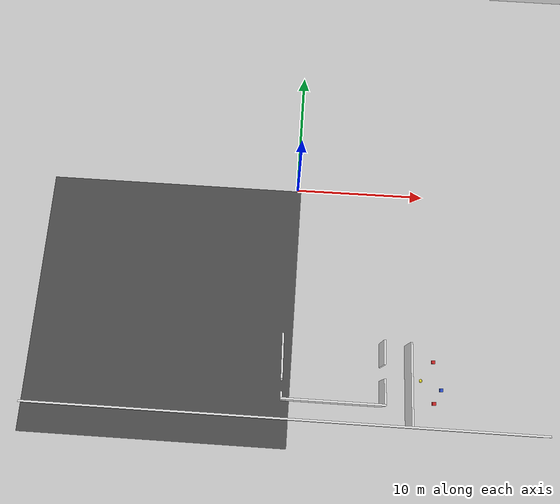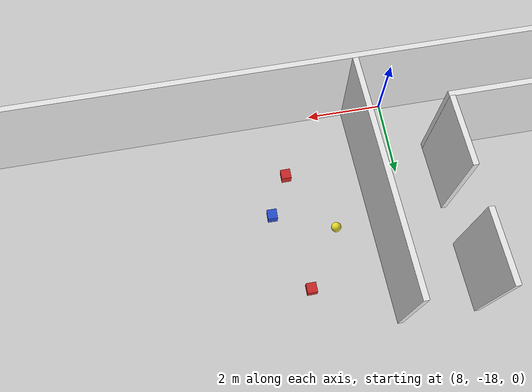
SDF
<sdf version="1.7">
 <world name="default">
  <model name="ground_plane">
   <static>1</static>
   <link name="link">
    <collision name="collision">
     <geometry><plane><normal>0 0 1</normal><size>100 100</size></plane></geometry>
     <surface><friction><ode><mu>100</mu><mu2>50</mu2></ode></friction></surface>
    </collision>
    <visual name="visual">
     <cast_shadows>0</cast_shadows>
     <geometry><plane><normal>0 0 1</normal><size>100 100</size></plane></geometry>
     <material>
      <script><uri>file://media/materials/scripts/gazebo.material</uri><name>Gazebo/Grey</name></script>
     </material>
    </visual>
    <velocity_decay><linear>0</linear><angular>0</angular></velocity_decay>
   </link>
  </model>
  <model name="asphalt_plane">
   <static>1</static>
   <link name="link">
    <collision name="collision"><geometry><box><size>20 20 0.1</size></box></geometry></collision>
    <visual name="visual">
     <cast_shadows>0</cast_shadows>
     <geometry><box><size>20 20 0.1</size></box></geometry>
     <material>
      <script>
       <uri>model://asphalt_plane/materials/scripts</uri>
       <uri>model://asphalt_plane/materials/textures</uri>
       <name>vrc/asphalt</name>
      </script>
     </material>
    </visual>
   </link>
   <pose>-9.73878 -10.1135 0 0 -0 0</pose>
  </model>
  <model name="white_wall_outside_clone">
   <link name="link">
    <inertial>
     <mass>1</mass>
     <inertia>
      <ixx>0.166667</ixx>
      <ixy>0</ixy>
      <ixz>0</ixz>
      <iyy>0.166667</iyy>
      <iyz>0</iyz>
      <izz>0.166667</izz>
     </inertia>
    </inertial>
    <visual name="visual">
     <geometry><box><size>37.6355 0.139088 2.78993</size></box></geometry>
     <material>
      <script><name>Gazebo/White</name><uri>file://media/materials/scripts/gazebo.material</uri></script>
      <shader type="vertex"><normal_map>__default__</normal_map></shader>
      <ambient>1 1 1 1</ambient>
      <diffuse>1 1 1 1</diffuse>
      <specular>0 0 0 1</specular>
      <emissive>0 0 0 1</emissive>
     </material>
    </visual>
    <collision name="collision">
     <geometry><box><size>37.6355 0.139088 2.78993</size></box></geometry>
     <surface>
      <friction>
       <ode><mu>1</mu><mu2>1</mu2><fdir1>0 0 0</fdir1><slip1>0</slip1><slip2>0</slip2></ode>
       <torsional>
        <coefficient>1</coefficient>
        <patch_radius>0</patch_radius>
        <surface_radius>0</surface_radius>
        <use_patch_radius>1</use_patch_radius>
        <ode><slip>0</slip></ode>
       </torsional>
      </friction>
      <bounce><restitution_coefficient>0</restitution_coefficient><threshold>1e+06</threshold></bounce>
      <contact>
       <collide_without_contact>0</collide_without_contact>
       <collide_without_contact_bitmask>1</collide_without_contact_bitmask>
       <collide_bitmask>1</collide_bitmask>
       <ode>
        <soft_cfm>0</soft_cfm>
        <soft_erp>0.2</soft_erp>
        <kp>1e+13</kp>
        <kd>1</kd>
        <max_vel>0.01</max_vel>
        <min_depth>0</min_depth>
       </ode>
       <bullet>
        <split_impulse>1</split_impulse>
        <split_impulse_penetration_threshold>-0.01</split_impulse_penetration_threshold>
        <soft_cfm>0</soft_cfm>
        <soft_erp>0.2</soft_erp>
        <kp>1e+13</kp>
        <kd>1</kd>
       </bullet>
      </contact>
     </surface>
    </collision>
   </link>
   <static>1</static>
   <pose>-0.112251 -17.9871 1.44002 -1e-06 4e-06 -1.6e-05</pose>
  </model>
  <model name="white_wall3">
   <link name="link">
    <inertial>
     <mass>1</mass>
     <inertia>
      <ixx>0.166667</ixx>
      <ixy>0</ixy>
      <ixz>0</ixz>
      <iyy>0.166667</iyy>
      <iyz>0</iyz>
      <izz>0.166667</izz>
     </inertia>
    </inertial>
    <visual name="visual">
     <geometry><box><size>1.77743 0.139088 2.78993</size></box></geometry>
     <material>
      <script><name>Gazebo/White</name><uri>file://media/materials/scripts/gazebo.material</uri></script>
      <shader type="vertex"><normal_map>__default__</normal_map></shader>
      <ambient>1 1 1 1</ambient>
      <diffuse>1 1 1 1</diffuse>
      <specular>0 0 0 1</specular>
      <emissive>0 0 0 1</emissive>
     </material>
    </visual>
    <collision name="collision">
     <geometry><box><size>1.77743 0.139088 2.78993</size></box></geometry>
     <surface>
      <friction>
       <ode><mu>1</mu><mu2>1</mu2><fdir1>0 0 0</fdir1><slip1>0</slip1><slip2>0</slip2></ode>
       <torsional>
        <coefficient>1</coefficient>
        <patch_radius>0</patch_radius>
        <surface_radius>0</surface_radius>
        <use_patch_radius>1</use_patch_radius>
        <ode><slip>0</slip></ode>
       </torsional>
      </friction>
      <bounce><restitution_coefficient>0</restitution_coefficient><threshold>1e+06</threshold></bounce>
      <contact>
       <collide_without_contact>0</collide_without_contact>
       <collide_without_contact_bitmask>1</collide_without_contact_bitmask>
       <collide_bitmask>1</collide_bitmask>
       <ode>
        <soft_cfm>0</soft_cfm>
        <soft_erp>0.2</soft_erp>
        <kp>1e+13</kp>
        <kd>1</kd>
        <max_vel>0.01</max_vel>
        <min_depth>0</min_depth>
       </ode>
       <bullet>
        <split_impulse>1</split_impulse>
        <split_impulse_penetration_threshold>-0.01</split_impulse_penetration_threshold>
        <soft_cfm>0</soft_cfm>
        <soft_erp>0.2</soft_erp>
        <kp>1e+13</kp>
        <kd>1</kd>
       </bullet>
      </contact>
     </surface>
    </collision>
   </link>
   <static>1</static>
   <pose>6.94731 -12.8803 1.43995 4e-06 1e-06 1.59932</pose>
  </model>
  <model name="white_wall2_clone">
   <link name="link">
    <inertial>
     <mass>1</mass>
     <inertia>
      <ixx>0.166667</ixx>
      <ixy>0</ixy>
      <ixz>0</ixz>
      <iyy>0.166667</iyy>
      <iyz>0</iyz>
      <izz>0.166667</izz>
     </inertia>
    </inertial>
    <visual name="visual">
     <geometry><box><size>3.22688 0.139088 2.78993</size></box></geometry>
     <material>
      <script><name>Gazebo/White</name><uri>file://media/materials/scripts/gazebo.material</uri></script>
      <shader type="vertex"><normal_map>__default__</normal_map></shader>
      <ambient>1 1 1 1</ambient>
      <diffuse>1 1 1 1</diffuse>
      <specular>0 0 0 1</specular>
      <emissive>0 0 0 1</emissive>
     </material>
    </visual>
    <collision name="collision">
     <geometry><box><size>3.22688 0.139088 2.78993</size></box></geometry>
     <surface>
      <friction>
       <ode><mu>1</mu><mu2>1</mu2><fdir1>0 0 0</fdir1><slip1>0</slip1><slip2>0</slip2></ode>
       <torsional>
        <coefficient>1</coefficient>
        <patch_radius>0</patch_radius>
        <surface_radius>0</surface_radius>
        <use_patch_radius>1</use_patch_radius>
        <ode><slip>0</slip></ode>
       </torsional>
      </friction>
      <bounce><restitution_coefficient>0</restitution_coefficient><threshold>1e+06</threshold></bounce>
      <contact>
       <collide_without_contact>0</collide_without_contact>
       <collide_without_contact_bitmask>1</collide_without_contact_bitmask>
       <collide_bitmask>1</collide_bitmask>
       <ode>
        <soft_cfm>0</soft_cfm>
        <soft_erp>0.2</soft_erp>
        <kp>1e+13</kp>
        <kd>1</kd>
        <max_vel>0.01</max_vel>
        <min_depth>0</min_depth>
       </ode>
       <bullet>
        <split_impulse>1</split_impulse>
        <split_impulse_penetration_threshold>-0.01</split_impulse_penetration_threshold>
        <soft_cfm>0</soft_cfm>
        <soft_erp>0.2</soft_erp>
        <kp>1e+13</kp>
        <kd>1</kd>
       </bullet>
      </contact>
     </surface>
    </collision>
   </link>
   <static>1</static>
   <pose>-0.413972 -13.5813 1.43995 4e-06 1e-06 1.59932</pose>
  </model>
  <model name="white_wall10">
   <link name="link">
    <inertial>
     <mass>1</mass>
     <inertia>
      <ixx>0.166667</ixx>
      <ixy>0</ixy>
      <ixz>0</ixz>
      <iyy>0.166667</iyy>
      <iyz>0</iyz>
      <izz>0.166667</izz>
     </inertia>
    </inertial>
    <visual name="visual">
     <geometry><box><size>6.01508 0.139088 2.78993</size></box></geometry>
     <material>
      <script><name>Gazebo/White</name><uri>file://media/materials/scripts/gazebo.material</uri></script>
      <shader type="vertex"><normal_map>__default__</normal_map></shader>
      <ambient>1 1 1 1</ambient>
      <diffuse>1 1 1 1</diffuse>
      <specular>0 0 0 1</specular>
      <emissive>0 0 0 1</emissive>
     </material>
    </visual>
    <collision name="collision">
     <geometry><box><size>6.01508 0.139088 2.78993</size></box></geometry>
     <surface>
      <friction>
       <ode><mu>1</mu><mu2>1</mu2><fdir1>0 0 0</fdir1><slip1>0</slip1><slip2>0</slip2></ode>
       <torsional>
        <coefficient>1</coefficient>
        <patch_radius>0</patch_radius>
        <surface_radius>0</surface_radius>
        <use_patch_radius>1</use_patch_radius>
        <ode><slip>0</slip></ode>
       </torsional>
      </friction>
      <bounce><restitution_coefficient>0</restitution_coefficient><threshold>1e+06</threshold></bounce>
      <contact>
       <collide_without_contact>0</collide_without_contact>
       <collide_without_contact_bitmask>1</collide_without_contact_bitmask>
       <collide_bitmask>1</collide_bitmask>
       <ode>
        <soft_cfm>0</soft_cfm>
        <soft_erp>0.2</soft_erp>
        <kp>1e+13</kp>
        <kd>1</kd>
        <max_vel>0.01</max_vel>
        <min_depth>0</min_depth>
       </ode>
       <bullet>
        <split_impulse>1</split_impulse>
        <split_impulse_penetration_threshold>-0.01</split_impulse_penetration_threshold>
        <soft_cfm>0</soft_cfm>
        <soft_erp>0.2</soft_erp>
        <kp>1e+13</kp>
        <kd>1</kd>
       </bullet>
      </contact>
     </surface>
    </collision>
   </link>
   <static>1</static>
   <pose>8.95321 -15.0279 1.43993 4e-06 1e-06 1.59932</pose>
  </model>
  <model name="white_wall24">
   <link name="link">
    <inertial>
     <mass>1</mass>
     <inertia>
      <ixx>0.166667</ixx>
      <ixy>0</ixy>
      <ixz>0</ixz>
      <iyy>0.166667</iyy>
      <iyz>0</iyz>
      <izz>0.166667</izz>
     </inertia>
    </inertial>
    <visual name="visual">
     <geometry><box><size>0.562622 0.139088 2.78993</size></box></geometry>
     <material>
      <script><name>Gazebo/White</name><uri>file://media/materials/scripts/gazebo.material</uri></script>
      <shader type="vertex"><normal_map>__default__</normal_map></shader>
      <ambient>1 1 1 1</ambient>
      <diffuse>1 1 1 1</diffuse>
      <specular>0 0 0 1</specular>
      <emissive>0 0 0 1</emissive>
     </material>
    </visual>
    <collision name="collision">
     <geometry><box><size>0.562622 0.139088 2.78993</size></box></geometry>
     <surface>
      <friction>
       <ode><mu>1</mu><mu2>1</mu2><fdir1>0 0 0</fdir1><slip1>0</slip1><slip2>0</slip2></ode>
       <torsional>
        <coefficient>1</coefficient>
        <patch_radius>0</patch_radius>
        <surface_radius>0</surface_radius>
        <use_patch_radius>1</use_patch_radius>
        <ode><slip>0</slip></ode>
       </torsional>
      </friction>
      <bounce><restitution_coefficient>0</restitution_coefficient><threshold>1e+06</threshold></bounce>
      <contact>
       <collide_without_contact>0</collide_without_contact>
       <collide_without_contact_bitmask>1</collide_without_contact_bitmask>
       <collide_bitmask>1</collide_bitmask>
       <ode>
        <soft_cfm>0</soft_cfm>
        <soft_erp>0.2</soft_erp>
        <kp>1e+13</kp>
        <kd>1</kd>
        <max_vel>0.01</max_vel>
        <min_depth>0</min_depth>
       </ode>
       <bullet>
        <split_impulse>1</split_impulse>
        <split_impulse_penetration_threshold>-0.01</split_impulse_penetration_threshold>
        <soft_cfm>0</soft_cfm>
        <soft_erp>0.2</soft_erp>
        <kp>1e+13</kp>
        <kd>1</kd>
       </bullet>
      </contact>
     </surface>
    </collision>
   </link>
   <static>1</static>
   <pose>-0.328293 -16.3818 1.43995 4e-06 1e-06 1.59932</pose>
  </model>
  <model name="white_wall1_clone_1">
   <link name="link">
    <inertial>
     <mass>1</mass>
     <inertia>
      <ixx>0.166667</ixx>
      <ixy>0</ixy>
      <ixz>0</ixz>
      <iyy>0.166667</iyy>
      <iyz>0</iyz>
      <izz>0.166667</izz>
     </inertia>
    </inertial>
    <visual name="visual">
     <geometry><box><size>7.516 0.139088 2.78993</size></box></geometry>
     <material>
      <script><name>Gazebo/White</name><uri>file://media/materials/scripts/gazebo.material</uri></script>
      <shader type="vertex"><normal_map>__default__</normal_map></shader>
      <ambient>1 1 1 1</ambient>
      <diffuse>1 1 1 1</diffuse>
      <specular>0 0 0 1</specular>
      <emissive>0 0 0 1</emissive>
     </material>
    </visual>
    <collision name="collision">
     <geometry><box><size>7.516 0.139088 2.78993</size></box></geometry>
     <surface>
      <friction>
       <ode><mu>1</mu><mu2>1</mu2><fdir1>0 0 0</fdir1><slip1>0</slip1><slip2>0</slip2></ode>
       <torsional>
        <coefficient>1</coefficient>
        <patch_radius>0</patch_radius>
        <surface_radius>0</surface_radius>
        <use_patch_radius>1</use_patch_radius>
        <ode><slip>0</slip></ode>
       </torsional>
      </friction>
      <bounce><restitution_coefficient>0</restitution_coefficient><threshold>1e+06</threshold></bounce>
      <contact>
       <collide_without_contact>0</collide_without_contact>
       <collide_without_contact_bitmask>1</collide_without_contact_bitmask>
       <collide_bitmask>1</collide_bitmask>
       <ode>
        <soft_cfm>0</soft_cfm>
        <soft_erp>0.2</soft_erp>
        <kp>1e+13</kp>
        <kd>1</kd>
        <max_vel>0.01</max_vel>
        <min_depth>0</min_depth>
       </ode>
       <bullet>
        <split_impulse>1</split_impulse>
        <split_impulse_penetration_threshold>-0.01</split_impulse_penetration_threshold>
        <soft_cfm>0</soft_cfm>
        <soft_erp>0.2</soft_erp>
        <kp>1e+13</kp>
        <kd>1</kd>
       </bullet>
      </contact>
     </surface>
    </collision>
   </link>
   <static>1</static>
   <pose>3.37688 -16.5917 1.43996 -1e-06 4e-06 -1.6e-05</pose>
  </model>
  <model name="white_wall3_clone">
   <link name="link">
    <inertial>
     <mass>1</mass>
     <inertia>
      <ixx>0.166667</ixx>
      <ixy>0</ixy>
      <ixz>0</ixz>
      <iyy>0.166667</iyy>
      <iyz>0</iyz>
      <izz>0.166667</izz>
     </inertia>
    </inertial>
    <visual name="visual">
     <geometry><box><size>1.77743 0.139088 2.78993</size></box></geometry>
     <material>
      <script><name>Gazebo/White</name><uri>file://media/materials/scripts/gazebo.material</uri></script>
      <shader type="vertex"><normal_map>__default__</normal_map></shader>
      <ambient>1 1 1 1</ambient>
      <diffuse>1 1 1 1</diffuse>
      <specular>0 0 0 1</specular>
      <emissive>0 0 0 1</emissive>
     </material>
    </visual>
    <collision name="collision">
     <geometry><box><size>1.77743 0.139088 2.78993</size></box></geometry>
     <surface>
      <friction>
       <ode><mu>1</mu><mu2>1</mu2><fdir1>0 0 0</fdir1><slip1>0</slip1><slip2>0</slip2></ode>
       <torsional>
        <coefficient>1</coefficient>
        <patch_radius>0</patch_radius>
        <surface_radius>0</surface_radius>
        <use_patch_radius>1</use_patch_radius>
        <ode><slip>0</slip></ode>
       </torsional>
      </friction>
      <bounce><restitution_coefficient>0</restitution_coefficient><threshold>1e+06</threshold></bounce>
      <contact>
       <collide_without_contact>0</collide_without_contact>
       <collide_without_contact_bitmask>1</collide_without_contact_bitmask>
       <collide_bitmask>1</collide_bitmask>
       <ode>
        <soft_cfm>0</soft_cfm>
        <soft_erp>0.2</soft_erp>
        <kp>1e+13</kp>
        <kd>1</kd>
        <max_vel>0.01</max_vel>
        <min_depth>0</min_depth>
       </ode>
       <bullet>
        <split_impulse>1</split_impulse>
        <split_impulse_penetration_threshold>-0.01</split_impulse_penetration_threshold>
        <soft_cfm>0</soft_cfm>
        <soft_erp>0.2</soft_erp>
        <kp>1e+13</kp>
        <kd>1</kd>
       </bullet>
      </contact>
     </surface>
    </collision>
   </link>
   <static>1</static>
   <pose>7.03775 -15.6528 1.43995 4e-06 1e-06 1.59932</pose>
  </model>
  <model name="unit_box_red_25">
   <link name="link">
    <inertial>
     <mass>1</mass>
     <inertia>
      <ixx>0.166667</ixx>
      <ixy>0</ixy>
      <ixz>0</ixz>
      <iyy>0.166667</iyy>
      <iyz>0</iyz>
      <izz>0.166667</izz>
     </inertia>
    </inertial>
    <visual name="visual">
     <geometry><box><size>0.25 0.25 0.25</size></box></geometry>
     <material>
      <script><name>Gazebo/Red</name><uri>file://media/materials/scripts/gazebo.material</uri></script>
      <shader type="vertex"><normal_map>__default__</normal_map></shader>
      <ambient>1 0 0 1</ambient>
      <diffuse>1 0 0 1</diffuse>
      <specular>0.1 0.1 0.1 1</specular>
      <emissive>0 0 0 1</emissive>
     </material>
    </visual>
    <collision name="collision">
     <geometry><box><size>1 1 1</size></box></geometry>
     <surface>
      <friction>
       <ode><mu>1</mu><mu2>1</mu2><fdir1>0 0 0</fdir1><slip1>0</slip1><slip2>0</slip2></ode>
       <torsional>
        <coefficient>1</coefficient>
        <patch_radius>0</patch_radius>
        <surface_radius>0</surface_radius>
        <use_patch_radius>1</use_patch_radius>
        <ode><slip>0</slip></ode>
       </torsional>
      </friction>
      <bounce><restitution_coefficient>0</restitution_coefficient><threshold>1e+06</threshold></bounce>
      <contact>
       <collide_without_contact>0</collide_without_contact>
       <collide_without_contact_bitmask>1</collide_without_contact_bitmask>
       <collide_bitmask>1</collide_bitmask>
       <ode>
        <soft_cfm>0</soft_cfm>
        <soft_erp>0.2</soft_erp>
        <kp>1e+13</kp>
        <kd>1</kd>
        <max_vel>0.01</max_vel>
        <min_depth>0</min_depth>
       </ode>
       <bullet>
        <split_impulse>1</split_impulse>
        <split_impulse_penetration_threshold>-0.01</split_impulse_penetration_threshold>
        <soft_cfm>0</soft_cfm>
        <soft_erp>0.2</soft_erp>
        <kp>1e+13</kp>
        <kd>1</kd>
       </bullet>
      </contact>
     </surface>
    </collision>
   </link>
   <static>0</static>
   <pose>10.9847 -16.175 0.549995 -9e-06 -1e-06 3.9e-05</pose>
  </model>
  <model name="unit_box_blue_25">
   <link name="link">
    <inertial>
     <mass>1</mass>
     <inertia>
      <ixx>0.166667</ixx>
      <ixy>0</ixy>
      <ixz>0</ixz>
      <iyy>0.166667</iyy>
      <iyz>0</iyz>
      <izz>0.166667</izz>
     </inertia>
    </inertial>
    <visual name="visual">
     <geometry><box><size>0.25 0.25 0.25</size></box></geometry>
     <material>
      <script><name>Gazebo/Blue</name><uri>file://media/materials/scripts/gazebo.material</uri></script>
      <shader type="vertex"><normal_map>__default__</normal_map></shader>
      <ambient>0 0 1 1</ambient>
      <diffuse>0 0 1 1</diffuse>
      <specular>0.1 0.1 0.1 1</specular>
      <emissive>0 0 0 1</emissive>
     </material>
    </visual>
    <collision name="collision">
     <geometry><box><size>1 1 1</size></box></geometry>
     <surface>
      <friction>
       <ode><mu>1</mu><mu2>1</mu2><fdir1>0 0 0</fdir1><slip1>0</slip1><slip2>0</slip2></ode>
       <torsional>
        <coefficient>1</coefficient>
        <patch_radius>0</patch_radius>
        <surface_radius>0</surface_radius>
        <use_patch_radius>1</use_patch_radius>
        <ode><slip>0</slip></ode>
       </torsional>
      </friction>
      <bounce><restitution_coefficient>0</restitution_coefficient><threshold>1e+06</threshold></bounce>
      <contact>
       <collide_without_contact>0</collide_without_contact>
       <collide_without_contact_bitmask>1</collide_without_contact_bitmask>
       <collide_bitmask>1</collide_bitmask>
       <ode>
        <soft_cfm>0</soft_cfm>
        <soft_erp>0.2</soft_erp>
        <kp>1e+13</kp>
        <kd>1</kd>
        <max_vel>0.01</max_vel>
        <min_depth>0</min_depth>
       </ode>
       <bullet>
        <split_impulse>1</split_impulse>
        <split_impulse_penetration_threshold>-0.01</split_impulse_penetration_threshold>
        <soft_cfm>0</soft_cfm>
        <soft_erp>0.2</soft_erp>
        <kp>1e+13</kp>
        <kd>1</kd>
       </bullet>
      </contact>
     </surface>
    </collision>
   </link>
   <static>0</static>
   <pose>11.5198 -15.1593 0.549998 -4e-06 -1e-06 -0.012222</pose>
  </model>
  <model name="unit_box_red_25_clone_3">
   <link name="link">
    <inertial>
     <mass>1</mass>
     <inertia>
      <ixx>0.166667</ixx>
      <ixy>0</ixy>
      <ixz>0</ixz>
      <iyy>0.166667</iyy>
      <iyz>0</iyz>
      <izz>0.166667</izz>
     </inertia>
    </inertial>
    <visual name="visual">
     <geometry><box><size>0.25 0.25 0.25</size></box></geometry>
     <material>
      <script><name>Gazebo/Red</name><uri>file://media/materials/scripts/gazebo.material</uri></script>
      <shader type="vertex"><normal_map>__default__</normal_map></shader>
      <ambient>1 0 0 1</ambient>
      <diffuse>1 0 0 1</diffuse>
      <specular>0.1 0.1 0.1 1</specular>
      <emissive>0 0 0 1</emissive>
     </material>
    </visual>
    <collision name="collision">
     <geometry><box><size>1 1 1</size></box></geometry>
     <surface>
      <friction>
       <ode><mu>1</mu><mu2>1</mu2><fdir1>0 0 0</fdir1><slip1>0</slip1><slip2>0</slip2></ode>
       <torsional>
        <coefficient>1</coefficient>
        <patch_radius>0</patch_radius>
        <surface_radius>0</surface_radius>
        <use_patch_radius>1</use_patch_radius>
        <ode><slip>0</slip></ode>
       </torsional>
      </friction>
      <bounce><restitution_coefficient>0</restitution_coefficient><threshold>1e+06</threshold></bounce>
      <contact>
       <collide_without_contact>0</collide_without_contact>
       <collide_without_contact_bitmask>1</collide_without_contact_bitmask>
       <collide_bitmask>1</collide_bitmask>
       <ode>
        <soft_cfm>0</soft_cfm>
        <soft_erp>0.2</soft_erp>
        <kp>1e+13</kp>
        <kd>1</kd>
        <max_vel>0.01</max_vel>
        <min_depth>0</min_depth>
       </ode>
       <bullet>
        <split_impulse>1</split_impulse>
        <split_impulse_penetration_threshold>-0.01</split_impulse_penetration_threshold>
        <soft_cfm>0</soft_cfm>
        <soft_erp>0.2</soft_erp>
        <kp>1e+13</kp>
        <kd>1</kd>
       </bullet>
      </contact>
     </surface>
    </collision>
   </link>
   <static>0</static>
   <pose>10.9061 -13.1412 0.549995 -9e-06 -1e-06 3.9e-05</pose>
  </model>
  <model name="unit_sphere_yellow_25_clone_0">
   <link name="link">
    <inertial>
     <mass>1</mass>
     <inertia><ixx>0.1</ixx><ixy>0</ixy><ixz>0</ixz><iyy>0.1</iyy><iyz>0</iyz><izz>0.1</izz></inertia>
    </inertial>
    <visual name="visual">
     <geometry><sphere><radius>0.125</radius></sphere></geometry>
     <material>
      <script><name>Gazebo/Yellow</name><uri>file://media/materials/scripts/gazebo.material</uri></script>
      <shader type="vertex"><normal_map>__default__</normal_map></shader>
      <ambient>1 1 0 1</ambient>
      <diffuse>1 1 0 1</diffuse>
      <emissive>0 0 0 1</emissive>
     </material>
    </visual>
    <collision name="collision">
     <geometry><sphere><radius>0.5</radius></sphere></geometry>
     <surface>
      <friction>
       <ode><mu>1</mu><mu2>1</mu2><fdir1>0 0 0</fdir1><slip1>0</slip1><slip2>0</slip2></ode>
       <torsional>
        <coefficient>1</coefficient>
        <patch_radius>0</patch_radius>
        <surface_radius>0</surface_radius>
        <use_patch_radius>1</use_patch_radius>
        <ode><slip>0</slip></ode>
       </torsional>
      </friction>
      <bounce><restitution_coefficient>0</restitution_coefficient><threshold>1e+06</threshold></bounce>
      <contact>
       <collide_without_contact>0</collide_without_contact>
       <collide_without_contact_bitmask>1</collide_without_contact_bitmask>
       <collide_bitmask>1</collide_bitmask>
       <ode>
        <soft_cfm>0</soft_cfm>
        <soft_erp>0.2</soft_erp>
        <kp>1e+13</kp>
        <kd>1</kd>
        <max_vel>0.01</max_vel>
        <min_depth>0</min_depth>
       </ode>
       <bullet>
        <split_impulse>1</split_impulse>
        <split_impulse_penetration_threshold>-0.01</split_impulse_penetration_threshold>
        <soft_cfm>0</soft_cfm>
        <soft_erp>0.2</soft_erp>
        <kp>1e+13</kp>
        <kd>1</kd>
       </bullet>
      </contact>
     </surface>
    </collision>
   </link>
   <static>0</static>
   <pose>9.98748 -14.5781 0.55 0 -0 0</pose>
  </model>
 </world>
</sdf>
